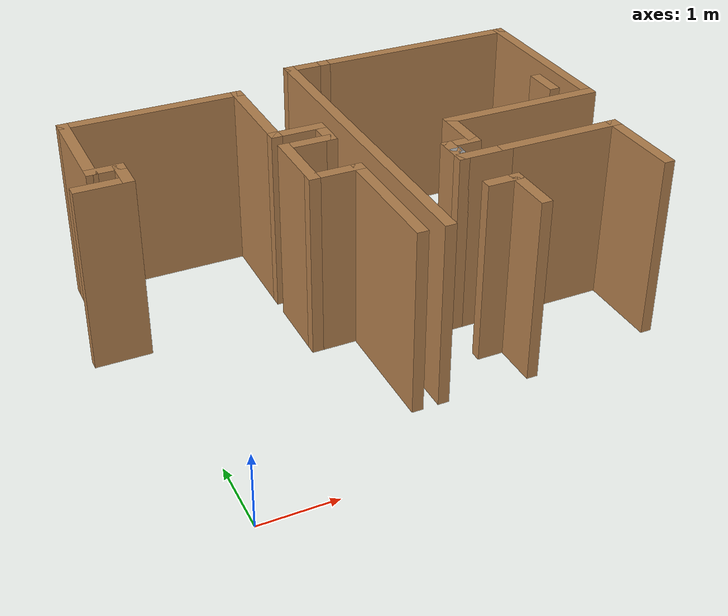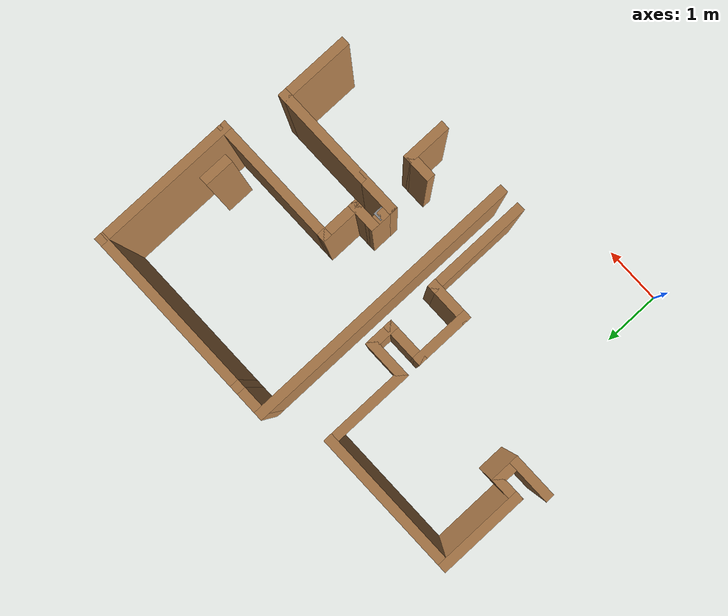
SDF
<sdf version="1.6">
 <model name="map_30">
  <link name="Wall_118">
   <pose>3.86699 1.65366 0 0 -0 0</pose>
   <visual name="Wall_118_Visual">
    <pose>0 0 1.25 0 -0 0</pose>
    <geometry><box><size>0.5 0.15 2.5</size></box></geometry>
    <material>
     <script><uri>file://media/materials/scripts/gazebo.material</uri><name>Gazebo/Wood</name></script>
     <ambient>1 1 1 1</ambient>
     <shader type="pixel"/>
    </material>
    <meta><layer>0</layer></meta>
   </visual>
   <collision name="Wall_118_Collision">
    <pose>0 0 1.25 0 -0 0</pose>
    <geometry><box><size>0.5 0.15 2.5</size></box></geometry>
    <surface>
     <friction>
      <ode><mu>1</mu><mu2>1</mu2><fdir1>0 0 0</fdir1><slip1>0</slip1><slip2>0</slip2></ode>
      <torsional>
       <coefficient>1</coefficient>
       <patch_radius>0</patch_radius>
       <surface_radius>0</surface_radius>
       <use_patch_radius>1</use_patch_radius>
       <ode><slip>0</slip></ode>
      </torsional>
     </friction>
     <bounce><restitution_coefficient>0</restitution_coefficient><threshold>1e+06</threshold></bounce>
     <contact>
      <collide_without_contact>0</collide_without_contact>
      <collide_without_contact_bitmask>1</collide_without_contact_bitmask>
      <collide_bitmask>1</collide_bitmask>
      <ode>
       <soft_cfm>0</soft_cfm>
       <soft_erp>0.2</soft_erp>
       <kp>1e+13</kp>
       <kd>1</kd>
       <max_vel>0.01</max_vel>
       <min_depth>0</min_depth>
      </ode>
      <bullet>
       <split_impulse>1</split_impulse>
       <split_impulse_penetration_threshold>-0.01</split_impulse_penetration_threshold>
       <soft_cfm>0</soft_cfm>
       <soft_erp>0.2</soft_erp>
       <kp>1e+13</kp>
       <kd>1</kd>
      </bullet>
     </contact>
    </surface>
   </collision>
  </link>
  <link name="Wall_121">
   <pose>4.04199 1.35366 0 0 0 -1.5708</pose>
   <visual name="Wall_121_Visual">
    <pose>0 0 1.25 0 -0 0</pose>
    <geometry><box><size>0.75 0.15 2.5</size></box></geometry>
    <material>
     <script><uri>file://media/materials/scripts/gazebo.material</uri><name>Gazebo/Wood</name></script>
     <ambient>1 1 1 1</ambient>
     <shader type="pixel"/>
    </material>
    <meta><layer>0</layer></meta>
   </visual>
   <collision name="Wall_121_Collision">
    <pose>0 0 1.25 0 -0 0</pose>
    <geometry><box><size>0.75 0.15 2.5</size></box></geometry>
    <surface>
     <friction>
      <ode><mu>1</mu><mu2>1</mu2><fdir1>0 0 0</fdir1><slip1>0</slip1><slip2>0</slip2></ode>
      <torsional>
       <coefficient>1</coefficient>
       <patch_radius>0</patch_radius>
       <surface_radius>0</surface_radius>
       <use_patch_radius>1</use_patch_radius>
       <ode><slip>0</slip></ode>
      </torsional>
     </friction>
     <bounce><restitution_coefficient>0</restitution_coefficient><threshold>1e+06</threshold></bounce>
     <contact>
      <collide_without_contact>0</collide_without_contact>
      <collide_without_contact_bitmask>1</collide_without_contact_bitmask>
      <collide_bitmask>1</collide_bitmask>
      <ode>
       <soft_cfm>0</soft_cfm>
       <soft_erp>0.2</soft_erp>
       <kp>1e+13</kp>
       <kd>1</kd>
       <max_vel>0.01</max_vel>
       <min_depth>0</min_depth>
      </ode>
      <bullet>
       <split_impulse>1</split_impulse>
       <split_impulse_penetration_threshold>-0.01</split_impulse_penetration_threshold>
       <soft_cfm>0</soft_cfm>
       <soft_erp>0.2</soft_erp>
       <kp>1e+13</kp>
       <kd>1</kd>
      </bullet>
     </contact>
    </surface>
   </collision>
  </link>
  <link name="Wall_125">
   <pose>5.90506 1.81618 0 0 -0 1.5708</pose>
   <visual name="Wall_125_Visual">
    <pose>0 0 1.25 0 -0 0</pose>
    <geometry><box><size>1.25 0.15 2.5</size></box></geometry>
    <material>
     <script><uri>file://media/materials/scripts/gazebo.material</uri><name>Gazebo/Wood</name></script>
     <ambient>1 1 1 1</ambient>
     <shader type="pixel"/>
    </material>
    <meta><layer>0</layer></meta>
   </visual>
   <collision name="Wall_125_Collision">
    <pose>0 0 1.25 0 -0 0</pose>
    <geometry><box><size>1.25 0.15 2.5</size></box></geometry>
    <surface>
     <friction>
      <ode><mu>1</mu><mu2>1</mu2><fdir1>0 0 0</fdir1><slip1>0</slip1><slip2>0</slip2></ode>
      <torsional>
       <coefficient>1</coefficient>
       <patch_radius>0</patch_radius>
       <surface_radius>0</surface_radius>
       <use_patch_radius>1</use_patch_radius>
       <ode><slip>0</slip></ode>
      </torsional>
     </friction>
     <bounce><restitution_coefficient>0</restitution_coefficient><threshold>1e+06</threshold></bounce>
     <contact>
      <collide_without_contact>0</collide_without_contact>
      <collide_without_contact_bitmask>1</collide_without_contact_bitmask>
      <collide_bitmask>1</collide_bitmask>
      <ode>
       <soft_cfm>0</soft_cfm>
       <soft_erp>0.2</soft_erp>
       <kp>1e+13</kp>
       <kd>1</kd>
       <max_vel>0.01</max_vel>
       <min_depth>0</min_depth>
      </ode>
      <bullet>
       <split_impulse>1</split_impulse>
       <split_impulse_penetration_threshold>-0.01</split_impulse_penetration_threshold>
       <soft_cfm>0</soft_cfm>
       <soft_erp>0.2</soft_erp>
       <kp>1e+13</kp>
       <kd>1</kd>
      </bullet>
     </contact>
    </surface>
   </collision>
  </link>
  <link name="Wall_126">
   <pose>5.10506 2.36618 0 0 -0 3.14159</pose>
   <visual name="Wall_126_Visual">
    <pose>0 0 1.25 0 -0 0</pose>
    <geometry><box><size>1.75 0.15 2.5</size></box></geometry>
    <material>
     <script><uri>file://media/materials/scripts/gazebo.material</uri><name>Gazebo/Wood</name></script>
     <ambient>1 1 1 1</ambient>
     <shader type="pixel"/>
    </material>
    <meta><layer>0</layer></meta>
   </visual>
   <collision name="Wall_126_Collision">
    <pose>0 0 1.25 0 -0 0</pose>
    <geometry><box><size>1.75 0.15 2.5</size></box></geometry>
    <surface>
     <friction>
      <ode><mu>1</mu><mu2>1</mu2><fdir1>0 0 0</fdir1><slip1>0</slip1><slip2>0</slip2></ode>
      <torsional>
       <coefficient>1</coefficient>
       <patch_radius>0</patch_radius>
       <surface_radius>0</surface_radius>
       <use_patch_radius>1</use_patch_radius>
       <ode><slip>0</slip></ode>
      </torsional>
     </friction>
     <bounce><restitution_coefficient>0</restitution_coefficient><threshold>1e+06</threshold></bounce>
     <contact>
      <collide_without_contact>0</collide_without_contact>
      <collide_without_contact_bitmask>1</collide_without_contact_bitmask>
      <collide_bitmask>1</collide_bitmask>
      <ode>
       <soft_cfm>0</soft_cfm>
       <soft_erp>0.2</soft_erp>
       <kp>1e+13</kp>
       <kd>1</kd>
       <max_vel>0.01</max_vel>
       <min_depth>0</min_depth>
      </ode>
      <bullet>
       <split_impulse>1</split_impulse>
       <split_impulse_penetration_threshold>-0.01</split_impulse_penetration_threshold>
       <soft_cfm>0</soft_cfm>
       <soft_erp>0.2</soft_erp>
       <kp>1e+13</kp>
       <kd>1</kd>
      </bullet>
     </contact>
    </surface>
   </collision>
  </link>
  <link name="Wall_128">
   <pose>3.7255 2.52147 0 0 -0 0</pose>
   <visual name="Wall_128_Visual">
    <pose>0 0 1.25 0 -0 0</pose>
    <geometry><box><size>0.15 0.15 2.5</size></box></geometry>
    <material>
     <script><uri>file://media/materials/scripts/gazebo.material</uri><name>Gazebo/Grey</name></script>
     <ambient>1 1 1 1</ambient>
     <shader type="pixel"/>
    </material>
    <meta><layer>0</layer></meta>
   </visual>
   <collision name="Wall_128_Collision">
    <pose>0 0 1.25 0 -0 0</pose>
    <geometry><box><size>0.15 0.15 2.5</size></box></geometry>
    <surface>
     <friction>
      <ode><mu>1</mu><mu2>1</mu2><fdir1>0 0 0</fdir1><slip1>0</slip1><slip2>0</slip2></ode>
      <torsional>
       <coefficient>1</coefficient>
       <patch_radius>0</patch_radius>
       <surface_radius>0</surface_radius>
       <use_patch_radius>1</use_patch_radius>
       <ode><slip>0</slip></ode>
      </torsional>
     </friction>
     <bounce><restitution_coefficient>0</restitution_coefficient><threshold>1e+06</threshold></bounce>
     <contact>
      <collide_without_contact>0</collide_without_contact>
      <collide_without_contact_bitmask>1</collide_without_contact_bitmask>
      <collide_bitmask>1</collide_bitmask>
      <ode>
       <soft_cfm>0</soft_cfm>
       <soft_erp>0.2</soft_erp>
       <kp>1e+13</kp>
       <kd>1</kd>
       <max_vel>0.01</max_vel>
       <min_depth>0</min_depth>
      </ode>
      <bullet>
       <split_impulse>1</split_impulse>
       <split_impulse_penetration_threshold>-0.01</split_impulse_penetration_threshold>
       <soft_cfm>0</soft_cfm>
       <soft_erp>0.2</soft_erp>
       <kp>1e+13</kp>
       <kd>1</kd>
      </bullet>
     </contact>
    </surface>
   </collision>
  </link>
  <link name="Wall_130">
   <pose>4.00506 2.36618 0 0 -0 3.14159</pose>
   <visual name="Wall_130_Visual">
    <pose>0 0 1.25 0 -0 0</pose>
    <geometry><box><size>0.75 0.15 2.5</size></box></geometry>
    <material>
     <script><uri>file://media/materials/scripts/gazebo.material</uri><name>Gazebo/Wood</name></script>
     <ambient>1 1 1 1</ambient>
     <shader type="pixel"/>
    </material>
    <meta><layer>0</layer></meta>
   </visual>
   <collision name="Wall_130_Collision">
    <pose>0 0 1.25 0 -0 0</pose>
    <geometry><box><size>0.75 0.15 2.5</size></box></geometry>
    <surface>
     <friction>
      <ode><mu>1</mu><mu2>1</mu2><fdir1>0 0 0</fdir1><slip1>0</slip1><slip2>0</slip2></ode>
      <torsional>
       <coefficient>1</coefficient>
       <patch_radius>0</patch_radius>
       <surface_radius>0</surface_radius>
       <use_patch_radius>1</use_patch_radius>
       <ode><slip>0</slip></ode>
      </torsional>
     </friction>
     <bounce><restitution_coefficient>0</restitution_coefficient><threshold>1e+06</threshold></bounce>
     <contact>
      <collide_without_contact>0</collide_without_contact>
      <collide_without_contact_bitmask>1</collide_without_contact_bitmask>
      <collide_bitmask>1</collide_bitmask>
      <ode>
       <soft_cfm>0</soft_cfm>
       <soft_erp>0.2</soft_erp>
       <kp>1e+13</kp>
       <kd>1</kd>
       <max_vel>0.01</max_vel>
       <min_depth>0</min_depth>
      </ode>
      <bullet>
       <split_impulse>1</split_impulse>
       <split_impulse_penetration_threshold>-0.01</split_impulse_penetration_threshold>
       <soft_cfm>0</soft_cfm>
       <soft_erp>0.2</soft_erp>
       <kp>1e+13</kp>
       <kd>1</kd>
      </bullet>
     </contact>
    </surface>
   </collision>
  </link>
  <link name="Wall_131">
   <pose>3.70506 2.54118 0 0 -0 1.5708</pose>
   <visual name="Wall_131_Visual">
    <pose>0 0 1.25 0 -0 0</pose>
    <geometry><box><size>0.5 0.15 2.5</size></box></geometry>
    <material>
     <script><uri>file://media/materials/scripts/gazebo.material</uri><name>Gazebo/Wood</name></script>
     <ambient>1 1 1 1</ambient>
     <shader type="pixel"/>
    </material>
    <meta><layer>0</layer></meta>
   </visual>
   <collision name="Wall_131_Collision">
    <pose>0 0 1.25 0 -0 0</pose>
    <geometry><box><size>0.5 0.15 2.5</size></box></geometry>
    <surface>
     <friction>
      <ode><mu>1</mu><mu2>1</mu2><fdir1>0 0 0</fdir1><slip1>0</slip1><slip2>0</slip2></ode>
      <torsional>
       <coefficient>1</coefficient>
       <patch_radius>0</patch_radius>
       <surface_radius>0</surface_radius>
       <use_patch_radius>1</use_patch_radius>
       <ode><slip>0</slip></ode>
      </torsional>
     </friction>
     <bounce><restitution_coefficient>0</restitution_coefficient><threshold>1e+06</threshold></bounce>
     <contact>
      <collide_without_contact>0</collide_without_contact>
      <collide_without_contact_bitmask>1</collide_without_contact_bitmask>
      <collide_bitmask>1</collide_bitmask>
      <ode>
       <soft_cfm>0</soft_cfm>
       <soft_erp>0.2</soft_erp>
       <kp>1e+13</kp>
       <kd>1</kd>
       <max_vel>0.01</max_vel>
       <min_depth>0</min_depth>
      </ode>
      <bullet>
       <split_impulse>1</split_impulse>
       <split_impulse_penetration_threshold>-0.01</split_impulse_penetration_threshold>
       <soft_cfm>0</soft_cfm>
       <soft_erp>0.2</soft_erp>
       <kp>1e+13</kp>
       <kd>1</kd>
      </bullet>
     </contact>
    </surface>
   </collision>
  </link>
  <link name="Wall_132">
   <pose>3.88006 2.71618 0 0 -0 0</pose>
   <visual name="Wall_132_Visual">
    <pose>0 0 1.25 0 -0 0</pose>
    <geometry><box><size>0.5 0.15 2.5</size></box></geometry>
    <material>
     <script><uri>file://media/materials/scripts/gazebo.material</uri><name>Gazebo/Wood</name></script>
     <ambient>1 1 1 1</ambient>
     <shader type="pixel"/>
    </material>
    <meta><layer>0</layer></meta>
   </visual>
   <collision name="Wall_132_Collision">
    <pose>0 0 1.25 0 -0 0</pose>
    <geometry><box><size>0.5 0.15 2.5</size></box></geometry>
    <surface>
     <friction>
      <ode><mu>1</mu><mu2>1</mu2><fdir1>0 0 0</fdir1><slip1>0</slip1><slip2>0</slip2></ode>
      <torsional>
       <coefficient>1</coefficient>
       <patch_radius>0</patch_radius>
       <surface_radius>0</surface_radius>
       <use_patch_radius>1</use_patch_radius>
       <ode><slip>0</slip></ode>
      </torsional>
     </friction>
     <bounce><restitution_coefficient>0</restitution_coefficient><threshold>1e+06</threshold></bounce>
     <contact>
      <collide_without_contact>0</collide_without_contact>
      <collide_without_contact_bitmask>1</collide_without_contact_bitmask>
      <collide_bitmask>1</collide_bitmask>
      <ode>
       <soft_cfm>0</soft_cfm>
       <soft_erp>0.2</soft_erp>
       <kp>1e+13</kp>
       <kd>1</kd>
       <max_vel>0.01</max_vel>
       <min_depth>0</min_depth>
      </ode>
      <bullet>
       <split_impulse>1</split_impulse>
       <split_impulse_penetration_threshold>-0.01</split_impulse_penetration_threshold>
       <soft_cfm>0</soft_cfm>
       <soft_erp>0.2</soft_erp>
       <kp>1e+13</kp>
       <kd>1</kd>
      </bullet>
     </contact>
    </surface>
   </collision>
  </link>
  <link name="Wall_133">
   <pose>4.05506 3.01618 0 0 -0 1.5708</pose>
   <visual name="Wall_133_Visual">
    <pose>0 0 1.25 0 -0 0</pose>
    <geometry><box><size>0.75 0.15 2.5</size></box></geometry>
    <material>
     <script><uri>file://media/materials/scripts/gazebo.material</uri><name>Gazebo/Wood</name></script>
     <ambient>1 1 1 1</ambient>
     <shader type="pixel"/>
    </material>
    <meta><layer>0</layer></meta>
   </visual>
   <collision name="Wall_133_Collision">
    <pose>0 0 1.25 0 -0 0</pose>
    <geometry><box><size>0.75 0.15 2.5</size></box></geometry>
    <surface>
     <friction>
      <ode><mu>1</mu><mu2>1</mu2><fdir1>0 0 0</fdir1><slip1>0</slip1><slip2>0</slip2></ode>
      <torsional>
       <coefficient>1</coefficient>
       <patch_radius>0</patch_radius>
       <surface_radius>0</surface_radius>
       <use_patch_radius>1</use_patch_radius>
       <ode><slip>0</slip></ode>
      </torsional>
     </friction>
     <bounce><restitution_coefficient>0</restitution_coefficient><threshold>1e+06</threshold></bounce>
     <contact>
      <collide_without_contact>0</collide_without_contact>
      <collide_without_contact_bitmask>1</collide_without_contact_bitmask>
      <collide_bitmask>1</collide_bitmask>
      <ode>
       <soft_cfm>0</soft_cfm>
       <soft_erp>0.2</soft_erp>
       <kp>1e+13</kp>
       <kd>1</kd>
       <max_vel>0.01</max_vel>
       <min_depth>0</min_depth>
      </ode>
      <bullet>
       <split_impulse>1</split_impulse>
       <split_impulse_penetration_threshold>-0.01</split_impulse_penetration_threshold>
       <soft_cfm>0</soft_cfm>
       <soft_erp>0.2</soft_erp>
       <kp>1e+13</kp>
       <kd>1</kd>
      </bullet>
     </contact>
    </surface>
   </collision>
  </link>
  <link name="Wall_134">
   <pose>5.10506 3.31618 0 0 -0 0</pose>
   <visual name="Wall_134_Visual">
    <pose>0 0 1.25 0 -0 0</pose>
    <geometry><box><size>2.25 0.15 2.5</size></box></geometry>
    <material>
     <script><uri>file://media/materials/scripts/gazebo.material</uri><name>Gazebo/Wood</name></script>
     <ambient>1 1 1 1</ambient>
     <shader type="pixel"/>
    </material>
    <meta><layer>0</layer></meta>
   </visual>
   <collision name="Wall_134_Collision">
    <pose>0 0 1.25 0 -0 0</pose>
    <geometry><box><size>2.25 0.15 2.5</size></box></geometry>
    <surface>
     <friction>
      <ode><mu>1</mu><mu2>1</mu2><fdir1>0 0 0</fdir1><slip1>0</slip1><slip2>0</slip2></ode>
      <torsional>
       <coefficient>1</coefficient>
       <patch_radius>0</patch_radius>
       <surface_radius>0</surface_radius>
       <use_patch_radius>1</use_patch_radius>
       <ode><slip>0</slip></ode>
      </torsional>
     </friction>
     <bounce><restitution_coefficient>0</restitution_coefficient><threshold>1e+06</threshold></bounce>
     <contact>
      <collide_without_contact>0</collide_without_contact>
      <collide_without_contact_bitmask>1</collide_without_contact_bitmask>
      <collide_bitmask>1</collide_bitmask>
      <ode>
       <soft_cfm>0</soft_cfm>
       <soft_erp>0.2</soft_erp>
       <kp>1e+13</kp>
       <kd>1</kd>
       <max_vel>0.01</max_vel>
       <min_depth>0</min_depth>
      </ode>
      <bullet>
       <split_impulse>1</split_impulse>
       <split_impulse_penetration_threshold>-0.01</split_impulse_penetration_threshold>
       <soft_cfm>0</soft_cfm>
       <soft_erp>0.2</soft_erp>
       <kp>1e+13</kp>
       <kd>1</kd>
      </bullet>
     </contact>
    </surface>
   </collision>
  </link>
  <link name="Wall_135">
   <pose>6.15506 4.49118 0 0 -0 1.5708</pose>
   <visual name="Wall_135_Visual">
    <pose>0 0 1.25 0 -0 0</pose>
    <geometry><box><size>2.5 0.15 2.5</size></box></geometry>
    <material>
     <script><uri>file://media/materials/scripts/gazebo.material</uri><name>Gazebo/Wood</name></script>
     <ambient>1 1 1 1</ambient>
     <shader type="pixel"/>
    </material>
    <meta><layer>0</layer></meta>
   </visual>
   <collision name="Wall_135_Collision">
    <pose>0 0 1.25 0 -0 0</pose>
    <geometry><box><size>2.5 0.15 2.5</size></box></geometry>
    <surface>
     <friction>
      <ode><mu>1</mu><mu2>1</mu2><fdir1>0 0 0</fdir1><slip1>0</slip1><slip2>0</slip2></ode>
      <torsional>
       <coefficient>1</coefficient>
       <patch_radius>0</patch_radius>
       <surface_radius>0</surface_radius>
       <use_patch_radius>1</use_patch_radius>
       <ode><slip>0</slip></ode>
      </torsional>
     </friction>
     <bounce><restitution_coefficient>0</restitution_coefficient><threshold>1e+06</threshold></bounce>
     <contact>
      <collide_without_contact>0</collide_without_contact>
      <collide_without_contact_bitmask>1</collide_without_contact_bitmask>
      <collide_bitmask>1</collide_bitmask>
      <ode>
       <soft_cfm>0</soft_cfm>
       <soft_erp>0.2</soft_erp>
       <kp>1e+13</kp>
       <kd>1</kd>
       <max_vel>0.01</max_vel>
       <min_depth>0</min_depth>
      </ode>
      <bullet>
       <split_impulse>1</split_impulse>
       <split_impulse_penetration_threshold>-0.01</split_impulse_penetration_threshold>
       <soft_cfm>0</soft_cfm>
       <soft_erp>0.2</soft_erp>
       <kp>1e+13</kp>
       <kd>1</kd>
      </bullet>
     </contact>
    </surface>
   </collision>
  </link>
  <link name="Wall_137">
   <pose>3.30506 5.66618 0 0 -0 0</pose>
   <visual name="Wall_137_Visual">
    <pose>0 0 1.25 0 -0 0</pose>
    <geometry><box><size>0.15 0.15 2.5</size></box></geometry>
    <material>
     <script><uri>file://media/materials/scripts/gazebo.material</uri><name>Gazebo/Wood</name></script>
     <ambient>1 1 1 1</ambient>
     <shader type="pixel"/>
    </material>
    <meta><layer>0</layer></meta>
   </visual>
   <collision name="Wall_137_Collision">
    <pose>0 0 1.25 0 -0 0</pose>
    <geometry><box><size>0.15 0.15 2.5</size></box></geometry>
    <surface>
     <friction>
      <ode><mu>1</mu><mu2>1</mu2><fdir1>0 0 0</fdir1><slip1>0</slip1><slip2>0</slip2></ode>
      <torsional>
       <coefficient>1</coefficient>
       <patch_radius>0</patch_radius>
       <surface_radius>0</surface_radius>
       <use_patch_radius>1</use_patch_radius>
       <ode><slip>0</slip></ode>
      </torsional>
     </friction>
     <bounce><restitution_coefficient>0</restitution_coefficient><threshold>1e+06</threshold></bounce>
     <contact>
      <collide_without_contact>0</collide_without_contact>
      <collide_without_contact_bitmask>1</collide_without_contact_bitmask>
      <collide_bitmask>1</collide_bitmask>
      <ode>
       <soft_cfm>0</soft_cfm>
       <soft_erp>0.2</soft_erp>
       <kp>1e+13</kp>
       <kd>1</kd>
       <max_vel>0.01</max_vel>
       <min_depth>0</min_depth>
      </ode>
      <bullet>
       <split_impulse>1</split_impulse>
       <split_impulse_penetration_threshold>-0.01</split_impulse_penetration_threshold>
       <soft_cfm>0</soft_cfm>
       <soft_erp>0.2</soft_erp>
       <kp>1e+13</kp>
       <kd>1</kd>
      </bullet>
     </contact>
    </surface>
   </collision>
  </link>
  <link name="Wall_143">
   <pose>4.48006 5.66618 0 0 -0 3.14159</pose>
   <visual name="Wall_143_Visual">
    <pose>0 0 1.25 0 -0 0</pose>
    <geometry><box><size>3.5 0.15 2.5</size></box></geometry>
    <material>
     <script><uri>file://media/materials/scripts/gazebo.material</uri><name>Gazebo/Wood</name></script>
     <ambient>1 1 1 1</ambient>
     <shader type="pixel"/>
    </material>
    <meta><layer>0</layer></meta>
   </visual>
   <collision name="Wall_143_Collision">
    <pose>0 0 1.25 0 -0 0</pose>
    <geometry><box><size>3.5 0.15 2.5</size></box></geometry>
    <surface>
     <friction>
      <ode><mu>1</mu><mu2>1</mu2><fdir1>0 0 0</fdir1><slip1>0</slip1><slip2>0</slip2></ode>
      <torsional>
       <coefficient>1</coefficient>
       <patch_radius>0</patch_radius>
       <surface_radius>0</surface_radius>
       <use_patch_radius>1</use_patch_radius>
       <ode><slip>0</slip></ode>
      </torsional>
     </friction>
     <bounce><restitution_coefficient>0</restitution_coefficient><threshold>1e+06</threshold></bounce>
     <contact>
      <collide_without_contact>0</collide_without_contact>
      <collide_without_contact_bitmask>1</collide_without_contact_bitmask>
      <collide_bitmask>1</collide_bitmask>
      <ode>
       <soft_cfm>0</soft_cfm>
       <soft_erp>0.2</soft_erp>
       <kp>1e+13</kp>
       <kd>1</kd>
       <max_vel>0.01</max_vel>
       <min_depth>0</min_depth>
      </ode>
      <bullet>
       <split_impulse>1</split_impulse>
       <split_impulse_penetration_threshold>-0.01</split_impulse_penetration_threshold>
       <soft_cfm>0</soft_cfm>
       <soft_erp>0.2</soft_erp>
       <kp>1e+13</kp>
       <kd>1</kd>
      </bullet>
     </contact>
    </surface>
   </collision>
  </link>
  <link name="Wall_144">
   <pose>2.80506 3.36618 0 0 0 -1.5708</pose>
   <visual name="Wall_144_Visual">
    <pose>0 0 1.25 0 -0 0</pose>
    <geometry><box><size>4.75 0.15 2.5</size></box></geometry>
    <material>
     <script><uri>file://media/materials/scripts/gazebo.material</uri><name>Gazebo/Wood</name></script>
     <ambient>1 1 1 1</ambient>
     <shader type="pixel"/>
    </material>
    <meta><layer>0</layer></meta>
   </visual>
   <collision name="Wall_144_Collision">
    <pose>0 0 1.25 0 -0 0</pose>
    <geometry><box><size>4.75 0.15 2.5</size></box></geometry>
    <surface>
     <friction>
      <ode><mu>1</mu><mu2>1</mu2><fdir1>0 0 0</fdir1><slip1>0</slip1><slip2>0</slip2></ode>
      <torsional>
       <coefficient>1</coefficient>
       <patch_radius>0</patch_radius>
       <surface_radius>0</surface_radius>
       <use_patch_radius>1</use_patch_radius>
       <ode><slip>0</slip></ode>
      </torsional>
     </friction>
     <bounce><restitution_coefficient>0</restitution_coefficient><threshold>1e+06</threshold></bounce>
     <contact>
      <collide_without_contact>0</collide_without_contact>
      <collide_without_contact_bitmask>1</collide_without_contact_bitmask>
      <collide_bitmask>1</collide_bitmask>
      <ode>
       <soft_cfm>0</soft_cfm>
       <soft_erp>0.2</soft_erp>
       <kp>1e+13</kp>
       <kd>1</kd>
       <max_vel>0.01</max_vel>
       <min_depth>0</min_depth>
      </ode>
      <bullet>
       <split_impulse>1</split_impulse>
       <split_impulse_penetration_threshold>-0.01</split_impulse_penetration_threshold>
       <soft_cfm>0</soft_cfm>
       <soft_erp>0.2</soft_erp>
       <kp>1e+13</kp>
       <kd>1</kd>
      </bullet>
     </contact>
    </surface>
   </collision>
  </link>
  <link name="Wall_146">
   <pose>2.45506 1.86618 0 0 -0 1.5708</pose>
   <visual name="Wall_146_Visual">
    <pose>0 0 1.25 0 -0 0</pose>
    <geometry><box><size>1.75 0.15 2.5</size></box></geometry>
    <material>
     <script><uri>file://media/materials/scripts/gazebo.material</uri><name>Gazebo/Wood</name></script>
     <ambient>1 1 1 1</ambient>
     <shader type="pixel"/>
    </material>
    <meta><layer>0</layer></meta>
   </visual>
   <collision name="Wall_146_Collision">
    <pose>0 0 1.25 0 -0 0</pose>
    <geometry><box><size>1.75 0.15 2.5</size></box></geometry>
    <surface>
     <friction>
      <ode><mu>1</mu><mu2>1</mu2><fdir1>0 0 0</fdir1><slip1>0</slip1><slip2>0</slip2></ode>
      <torsional>
       <coefficient>1</coefficient>
       <patch_radius>0</patch_radius>
       <surface_radius>0</surface_radius>
       <use_patch_radius>1</use_patch_radius>
       <ode><slip>0</slip></ode>
      </torsional>
     </friction>
     <bounce><restitution_coefficient>0</restitution_coefficient><threshold>1e+06</threshold></bounce>
     <contact>
      <collide_without_contact>0</collide_without_contact>
      <collide_without_contact_bitmask>1</collide_without_contact_bitmask>
      <collide_bitmask>1</collide_bitmask>
      <ode>
       <soft_cfm>0</soft_cfm>
       <soft_erp>0.2</soft_erp>
       <kp>1e+13</kp>
       <kd>1</kd>
       <max_vel>0.01</max_vel>
       <min_depth>0</min_depth>
      </ode>
      <bullet>
       <split_impulse>1</split_impulse>
       <split_impulse_penetration_threshold>-0.01</split_impulse_penetration_threshold>
       <soft_cfm>0</soft_cfm>
       <soft_erp>0.2</soft_erp>
       <kp>1e+13</kp>
       <kd>1</kd>
      </bullet>
     </contact>
    </surface>
   </collision>
  </link>
  <link name="Wall_147">
   <pose>2.15506 2.66618 0 0 -0 3.14159</pose>
   <visual name="Wall_147_Visual">
    <pose>0 0 1.25 0 -0 0</pose>
    <geometry><box><size>0.75 0.15 2.5</size></box></geometry>
    <material>
     <script><uri>file://media/materials/scripts/gazebo.material</uri><name>Gazebo/Wood</name></script>
     <ambient>1 1 1 1</ambient>
     <shader type="pixel"/>
    </material>
    <meta><layer>0</layer></meta>
   </visual>
   <collision name="Wall_147_Collision">
    <pose>0 0 1.25 0 -0 0</pose>
    <geometry><box><size>0.75 0.15 2.5</size></box></geometry>
    <surface>
     <friction>
      <ode><mu>1</mu><mu2>1</mu2><fdir1>0 0 0</fdir1><slip1>0</slip1><slip2>0</slip2></ode>
      <torsional>
       <coefficient>1</coefficient>
       <patch_radius>0</patch_radius>
       <surface_radius>0</surface_radius>
       <use_patch_radius>1</use_patch_radius>
       <ode><slip>0</slip></ode>
      </torsional>
     </friction>
     <bounce><restitution_coefficient>0</restitution_coefficient><threshold>1e+06</threshold></bounce>
     <contact>
      <collide_without_contact>0</collide_without_contact>
      <collide_without_contact_bitmask>1</collide_without_contact_bitmask>
      <collide_bitmask>1</collide_bitmask>
      <ode>
       <soft_cfm>0</soft_cfm>
       <soft_erp>0.2</soft_erp>
       <kp>1e+13</kp>
       <kd>1</kd>
       <max_vel>0.01</max_vel>
       <min_depth>0</min_depth>
      </ode>
      <bullet>
       <split_impulse>1</split_impulse>
       <split_impulse_penetration_threshold>-0.01</split_impulse_penetration_threshold>
       <soft_cfm>0</soft_cfm>
       <soft_erp>0.2</soft_erp>
       <kp>1e+13</kp>
       <kd>1</kd>
      </bullet>
     </contact>
    </surface>
   </collision>
  </link>
  <link name="Wall_148">
   <pose>1.85506 3.09118 0 0 -0 1.5708</pose>
   <visual name="Wall_148_Visual">
    <pose>0 0 1.25 0 -0 0</pose>
    <geometry><box><size>1 0.15 2.5</size></box></geometry>
    <material>
     <script><uri>file://media/materials/scripts/gazebo.material</uri><name>Gazebo/Wood</name></script>
     <ambient>1 1 1 1</ambient>
     <shader type="pixel"/>
    </material>
    <meta><layer>0</layer></meta>
   </visual>
   <collision name="Wall_148_Collision">
    <pose>0 0 1.25 0 -0 0</pose>
    <geometry><box><size>1 0.15 2.5</size></box></geometry>
    <surface>
     <friction>
      <ode><mu>1</mu><mu2>1</mu2><fdir1>0 0 0</fdir1><slip1>0</slip1><slip2>0</slip2></ode>
      <torsional>
       <coefficient>1</coefficient>
       <patch_radius>0</patch_radius>
       <surface_radius>0</surface_radius>
       <use_patch_radius>1</use_patch_radius>
       <ode><slip>0</slip></ode>
      </torsional>
     </friction>
     <bounce><restitution_coefficient>0</restitution_coefficient><threshold>1e+06</threshold></bounce>
     <contact>
      <collide_without_contact>0</collide_without_contact>
      <collide_without_contact_bitmask>1</collide_without_contact_bitmask>
      <collide_bitmask>1</collide_bitmask>
      <ode>
       <soft_cfm>0</soft_cfm>
       <soft_erp>0.2</soft_erp>
       <kp>1e+13</kp>
       <kd>1</kd>
       <max_vel>0.01</max_vel>
       <min_depth>0</min_depth>
      </ode>
      <bullet>
       <split_impulse>1</split_impulse>
       <split_impulse_penetration_threshold>-0.01</split_impulse_penetration_threshold>
       <soft_cfm>0</soft_cfm>
       <soft_erp>0.2</soft_erp>
       <kp>1e+13</kp>
       <kd>1</kd>
      </bullet>
     </contact>
    </surface>
   </collision>
  </link>
  <link name="Wall_149">
   <pose>2.15506 3.51618 0 0 -0 0</pose>
   <visual name="Wall_149_Visual">
    <pose>0 0 1.25 0 -0 0</pose>
    <geometry><box><size>0.75 0.15 2.5</size></box></geometry>
    <material>
     <script><uri>file://media/materials/scripts/gazebo.material</uri><name>Gazebo/Wood</name></script>
     <ambient>1 1 1 1</ambient>
     <shader type="pixel"/>
    </material>
    <meta><layer>0</layer></meta>
   </visual>
   <collision name="Wall_149_Collision">
    <pose>0 0 1.25 0 -0 0</pose>
    <geometry><box><size>0.75 0.15 2.5</size></box></geometry>
    <surface>
     <friction>
      <ode><mu>1</mu><mu2>1</mu2><fdir1>0 0 0</fdir1><slip1>0</slip1><slip2>0</slip2></ode>
      <torsional>
       <coefficient>1</coefficient>
       <patch_radius>0</patch_radius>
       <surface_radius>0</surface_radius>
       <use_patch_radius>1</use_patch_radius>
       <ode><slip>0</slip></ode>
      </torsional>
     </friction>
     <bounce><restitution_coefficient>0</restitution_coefficient><threshold>1e+06</threshold></bounce>
     <contact>
      <collide_without_contact>0</collide_without_contact>
      <collide_without_contact_bitmask>1</collide_without_contact_bitmask>
      <collide_bitmask>1</collide_bitmask>
      <ode>
       <soft_cfm>0</soft_cfm>
       <soft_erp>0.2</soft_erp>
       <kp>1e+13</kp>
       <kd>1</kd>
       <max_vel>0.01</max_vel>
       <min_depth>0</min_depth>
      </ode>
      <bullet>
       <split_impulse>1</split_impulse>
       <split_impulse_penetration_threshold>-0.01</split_impulse_penetration_threshold>
       <soft_cfm>0</soft_cfm>
       <soft_erp>0.2</soft_erp>
       <kp>1e+13</kp>
       <kd>1</kd>
      </bullet>
     </contact>
    </surface>
   </collision>
  </link>
  <link name="Wall_150">
   <pose>2.45506 3.69118 0 0 -0 1.5708</pose>
   <visual name="Wall_150_Visual">
    <pose>0 0 1.25 0 -0 0</pose>
    <geometry><box><size>0.5 0.15 2.5</size></box></geometry>
    <material>
     <script><uri>file://media/materials/scripts/gazebo.material</uri><name>Gazebo/Wood</name></script>
     <ambient>1 1 1 1</ambient>
     <shader type="pixel"/>
    </material>
    <meta><layer>0</layer></meta>
   </visual>
   <collision name="Wall_150_Collision">
    <pose>0 0 1.25 0 -0 0</pose>
    <geometry><box><size>0.5 0.15 2.5</size></box></geometry>
    <surface>
     <friction>
      <ode><mu>1</mu><mu2>1</mu2><fdir1>0 0 0</fdir1><slip1>0</slip1><slip2>0</slip2></ode>
      <torsional>
       <coefficient>1</coefficient>
       <patch_radius>0</patch_radius>
       <surface_radius>0</surface_radius>
       <use_patch_radius>1</use_patch_radius>
       <ode><slip>0</slip></ode>
      </torsional>
     </friction>
     <bounce><restitution_coefficient>0</restitution_coefficient><threshold>1e+06</threshold></bounce>
     <contact>
      <collide_without_contact>0</collide_without_contact>
      <collide_without_contact_bitmask>1</collide_without_contact_bitmask>
      <collide_bitmask>1</collide_bitmask>
      <ode>
       <soft_cfm>0</soft_cfm>
       <soft_erp>0.2</soft_erp>
       <kp>1e+13</kp>
       <kd>1</kd>
       <max_vel>0.01</max_vel>
       <min_depth>0</min_depth>
      </ode>
      <bullet>
       <split_impulse>1</split_impulse>
       <split_impulse_penetration_threshold>-0.01</split_impulse_penetration_threshold>
       <soft_cfm>0</soft_cfm>
       <soft_erp>0.2</soft_erp>
       <kp>1e+13</kp>
       <kd>1</kd>
      </bullet>
     </contact>
    </surface>
   </collision>
  </link>
  <link name="Wall_151">
   <pose>2.15506 3.86618 0 0 -0 3.14159</pose>
   <visual name="Wall_151_Visual">
    <pose>0 0 1.25 0 -0 0</pose>
    <geometry><box><size>0.75 0.15 2.5</size></box></geometry>
    <material>
     <script><uri>file://media/materials/scripts/gazebo.material</uri><name>Gazebo/Wood</name></script>
     <ambient>1 1 1 1</ambient>
     <shader type="pixel"/>
    </material>
    <meta><layer>0</layer></meta>
   </visual>
   <collision name="Wall_151_Collision">
    <pose>0 0 1.25 0 -0 0</pose>
    <geometry><box><size>0.75 0.15 2.5</size></box></geometry>
    <surface>
     <friction>
      <ode><mu>1</mu><mu2>1</mu2><fdir1>0 0 0</fdir1><slip1>0</slip1><slip2>0</slip2></ode>
      <torsional>
       <coefficient>1</coefficient>
       <patch_radius>0</patch_radius>
       <surface_radius>0</surface_radius>
       <use_patch_radius>1</use_patch_radius>
       <ode><slip>0</slip></ode>
      </torsional>
     </friction>
     <bounce><restitution_coefficient>0</restitution_coefficient><threshold>1e+06</threshold></bounce>
     <contact>
      <collide_without_contact>0</collide_without_contact>
      <collide_without_contact_bitmask>1</collide_without_contact_bitmask>
      <collide_bitmask>1</collide_bitmask>
      <ode>
       <soft_cfm>0</soft_cfm>
       <soft_erp>0.2</soft_erp>
       <kp>1e+13</kp>
       <kd>1</kd>
       <max_vel>0.01</max_vel>
       <min_depth>0</min_depth>
      </ode>
      <bullet>
       <split_impulse>1</split_impulse>
       <split_impulse_penetration_threshold>-0.01</split_impulse_penetration_threshold>
       <soft_cfm>0</soft_cfm>
       <soft_erp>0.2</soft_erp>
       <kp>1e+13</kp>
       <kd>1</kd>
      </bullet>
     </contact>
    </surface>
   </collision>
  </link>
  <link name="Wall_152">
   <pose>1.85506 4.54118 0 0 -0 1.5708</pose>
   <visual name="Wall_152_Visual">
    <pose>0 0 1.25 0 -0 0</pose>
    <geometry><box><size>1.5 0.15 2.5</size></box></geometry>
    <material>
     <script><uri>file://media/materials/scripts/gazebo.material</uri><name>Gazebo/Wood</name></script>
     <ambient>1 1 1 1</ambient>
     <shader type="pixel"/>
    </material>
    <meta><layer>0</layer></meta>
   </visual>
   <collision name="Wall_152_Collision">
    <pose>0 0 1.25 0 -0 0</pose>
    <geometry><box><size>1.5 0.15 2.5</size></box></geometry>
    <surface>
     <friction>
      <ode><mu>1</mu><mu2>1</mu2><fdir1>0 0 0</fdir1><slip1>0</slip1><slip2>0</slip2></ode>
      <torsional>
       <coefficient>1</coefficient>
       <patch_radius>0</patch_radius>
       <surface_radius>0</surface_radius>
       <use_patch_radius>1</use_patch_radius>
       <ode><slip>0</slip></ode>
      </torsional>
     </friction>
     <bounce><restitution_coefficient>0</restitution_coefficient><threshold>1e+06</threshold></bounce>
     <contact>
      <collide_without_contact>0</collide_without_contact>
      <collide_without_contact_bitmask>1</collide_without_contact_bitmask>
      <collide_bitmask>1</collide_bitmask>
      <ode>
       <soft_cfm>0</soft_cfm>
       <soft_erp>0.2</soft_erp>
       <kp>1e+13</kp>
       <kd>1</kd>
       <max_vel>0.01</max_vel>
       <min_depth>0</min_depth>
      </ode>
      <bullet>
       <split_impulse>1</split_impulse>
       <split_impulse_penetration_threshold>-0.01</split_impulse_penetration_threshold>
       <soft_cfm>0</soft_cfm>
       <soft_erp>0.2</soft_erp>
       <kp>1e+13</kp>
       <kd>1</kd>
      </bullet>
     </contact>
    </surface>
   </collision>
  </link>
  <link name="Wall_153">
   <pose>0.680059 5.21618 0 0 -0 3.14159</pose>
   <visual name="Wall_153_Visual">
    <pose>0 0 1.25 0 -0 0</pose>
    <geometry><box><size>2.5 0.15 2.5</size></box></geometry>
    <material>
     <script><uri>file://media/materials/scripts/gazebo.material</uri><name>Gazebo/Wood</name></script>
     <ambient>1 1 1 1</ambient>
     <shader type="pixel"/>
    </material>
    <meta><layer>0</layer></meta>
   </visual>
   <collision name="Wall_153_Collision">
    <pose>0 0 1.25 0 -0 0</pose>
    <geometry><box><size>2.5 0.15 2.5</size></box></geometry>
    <surface>
     <friction>
      <ode><mu>1</mu><mu2>1</mu2><fdir1>0 0 0</fdir1><slip1>0</slip1><slip2>0</slip2></ode>
      <torsional>
       <coefficient>1</coefficient>
       <patch_radius>0</patch_radius>
       <surface_radius>0</surface_radius>
       <use_patch_radius>1</use_patch_radius>
       <ode><slip>0</slip></ode>
      </torsional>
     </friction>
     <bounce><restitution_coefficient>0</restitution_coefficient><threshold>1e+06</threshold></bounce>
     <contact>
      <collide_without_contact>0</collide_without_contact>
      <collide_without_contact_bitmask>1</collide_without_contact_bitmask>
      <collide_bitmask>1</collide_bitmask>
      <ode>
       <soft_cfm>0</soft_cfm>
       <soft_erp>0.2</soft_erp>
       <kp>1e+13</kp>
       <kd>1</kd>
       <max_vel>0.01</max_vel>
       <min_depth>0</min_depth>
      </ode>
      <bullet>
       <split_impulse>1</split_impulse>
       <split_impulse_penetration_threshold>-0.01</split_impulse_penetration_threshold>
       <soft_cfm>0</soft_cfm>
       <soft_erp>0.2</soft_erp>
       <kp>1e+13</kp>
       <kd>1</kd>
      </bullet>
     </contact>
    </surface>
   </collision>
  </link>
  <link name="Wall_154">
   <pose>-0.494941 4.54118 0 0 0 -1.5708</pose>
   <visual name="Wall_154_Visual">
    <pose>0 0 1.25 0 -0 0</pose>
    <geometry><box><size>1.5 0.15 2.5</size></box></geometry>
    <material>
     <script><uri>file://media/materials/scripts/gazebo.material</uri><name>Gazebo/Wood</name></script>
     <ambient>1 1 1 1</ambient>
     <shader type="pixel"/>
    </material>
    <meta><layer>0</layer></meta>
   </visual>
   <collision name="Wall_154_Collision">
    <pose>0 0 1.25 0 -0 0</pose>
    <geometry><box><size>1.5 0.15 2.5</size></box></geometry>
    <surface>
     <friction>
      <ode><mu>1</mu><mu2>1</mu2><fdir1>0 0 0</fdir1><slip1>0</slip1><slip2>0</slip2></ode>
      <torsional>
       <coefficient>1</coefficient>
       <patch_radius>0</patch_radius>
       <surface_radius>0</surface_radius>
       <use_patch_radius>1</use_patch_radius>
       <ode><slip>0</slip></ode>
      </torsional>
     </friction>
     <bounce><restitution_coefficient>0</restitution_coefficient><threshold>1e+06</threshold></bounce>
     <contact>
      <collide_without_contact>0</collide_without_contact>
      <collide_without_contact_bitmask>1</collide_without_contact_bitmask>
      <collide_bitmask>1</collide_bitmask>
      <ode>
       <soft_cfm>0</soft_cfm>
       <soft_erp>0.2</soft_erp>
       <kp>1e+13</kp>
       <kd>1</kd>
       <max_vel>0.01</max_vel>
       <min_depth>0</min_depth>
      </ode>
      <bullet>
       <split_impulse>1</split_impulse>
       <split_impulse_penetration_threshold>-0.01</split_impulse_penetration_threshold>
       <soft_cfm>0</soft_cfm>
       <soft_erp>0.2</soft_erp>
       <kp>1e+13</kp>
       <kd>1</kd>
      </bullet>
     </contact>
    </surface>
   </collision>
  </link>
  <link name="Wall_155">
   <pose>-0.319941 3.86618 0 0 -0 0</pose>
   <visual name="Wall_155_Visual">
    <pose>0 0 1.25 0 -0 0</pose>
    <geometry><box><size>0.5 0.15 2.5</size></box></geometry>
    <material>
     <script><uri>file://media/materials/scripts/gazebo.material</uri><name>Gazebo/Wood</name></script>
     <ambient>1 1 1 1</ambient>
     <shader type="pixel"/>
    </material>
    <meta><layer>0</layer></meta>
   </visual>
   <collision name="Wall_155_Collision">
    <pose>0 0 1.25 0 -0 0</pose>
    <geometry><box><size>0.5 0.15 2.5</size></box></geometry>
    <surface>
     <friction>
      <ode><mu>1</mu><mu2>1</mu2><fdir1>0 0 0</fdir1><slip1>0</slip1><slip2>0</slip2></ode>
      <torsional>
       <coefficient>1</coefficient>
       <patch_radius>0</patch_radius>
       <surface_radius>0</surface_radius>
       <use_patch_radius>1</use_patch_radius>
       <ode><slip>0</slip></ode>
      </torsional>
     </friction>
     <bounce><restitution_coefficient>0</restitution_coefficient><threshold>1e+06</threshold></bounce>
     <contact>
      <collide_without_contact>0</collide_without_contact>
      <collide_without_contact_bitmask>1</collide_without_contact_bitmask>
      <collide_bitmask>1</collide_bitmask>
      <ode>
       <soft_cfm>0</soft_cfm>
       <soft_erp>0.2</soft_erp>
       <kp>1e+13</kp>
       <kd>1</kd>
       <max_vel>0.01</max_vel>
       <min_depth>0</min_depth>
      </ode>
      <bullet>
       <split_impulse>1</split_impulse>
       <split_impulse_penetration_threshold>-0.01</split_impulse_penetration_threshold>
       <soft_cfm>0</soft_cfm>
       <soft_erp>0.2</soft_erp>
       <kp>1e+13</kp>
       <kd>1</kd>
      </bullet>
     </contact>
    </surface>
   </collision>
  </link>
  <link name="Wall_156">
   <pose>-0.14494 3.69118 0 0 0 -1.5708</pose>
   <visual name="Wall_156_Visual">
    <pose>0 0 1.25 0 -0 0</pose>
    <geometry><box><size>0.5 0.15 2.5</size></box></geometry>
    <material>
     <script><uri>file://media/materials/scripts/gazebo.material</uri><name>Gazebo/Wood</name></script>
     <ambient>1 1 1 1</ambient>
     <shader type="pixel"/>
    </material>
    <meta><layer>0</layer></meta>
   </visual>
   <collision name="Wall_156_Collision">
    <pose>0 0 1.25 0 -0 0</pose>
    <geometry><box><size>0.5 0.15 2.5</size></box></geometry>
    <surface>
     <friction>
      <ode><mu>1</mu><mu2>1</mu2><fdir1>0 0 0</fdir1><slip1>0</slip1><slip2>0</slip2></ode>
      <torsional>
       <coefficient>1</coefficient>
       <patch_radius>0</patch_radius>
       <surface_radius>0</surface_radius>
       <use_patch_radius>1</use_patch_radius>
       <ode><slip>0</slip></ode>
      </torsional>
     </friction>
     <bounce><restitution_coefficient>0</restitution_coefficient><threshold>1e+06</threshold></bounce>
     <contact>
      <collide_without_contact>0</collide_without_contact>
      <collide_without_contact_bitmask>1</collide_without_contact_bitmask>
      <collide_bitmask>1</collide_bitmask>
      <ode>
       <soft_cfm>0</soft_cfm>
       <soft_erp>0.2</soft_erp>
       <kp>1e+13</kp>
       <kd>1</kd>
       <max_vel>0.01</max_vel>
       <min_depth>0</min_depth>
      </ode>
      <bullet>
       <split_impulse>1</split_impulse>
       <split_impulse_penetration_threshold>-0.01</split_impulse_penetration_threshold>
       <soft_cfm>0</soft_cfm>
       <soft_erp>0.2</soft_erp>
       <kp>1e+13</kp>
       <kd>1</kd>
      </bullet>
     </contact>
    </surface>
   </collision>
  </link>
  <link name="Wall_157">
   <pose>-0.444941 3.51618 0 0 -0 3.14159</pose>
   <visual name="Wall_157_Visual">
    <pose>0 0 1.25 0 -0 0</pose>
    <geometry><box><size>0.75 0.15 2.5</size></box></geometry>
    <material>
     <script><uri>file://media/materials/scripts/gazebo.material</uri><name>Gazebo/Wood</name></script>
     <ambient>1 1 1 1</ambient>
     <shader type="pixel"/>
    </material>
    <meta><layer>0</layer></meta>
   </visual>
   <collision name="Wall_157_Collision">
    <pose>0 0 1.25 0 -0 0</pose>
    <geometry><box><size>0.75 0.15 2.5</size></box></geometry>
    <surface>
     <friction>
      <ode><mu>1</mu><mu2>1</mu2><fdir1>0 0 0</fdir1><slip1>0</slip1><slip2>0</slip2></ode>
      <torsional>
       <coefficient>1</coefficient>
       <patch_radius>0</patch_radius>
       <surface_radius>0</surface_radius>
       <use_patch_radius>1</use_patch_radius>
       <ode><slip>0</slip></ode>
      </torsional>
     </friction>
     <bounce><restitution_coefficient>0</restitution_coefficient><threshold>1e+06</threshold></bounce>
     <contact>
      <collide_without_contact>0</collide_without_contact>
      <collide_without_contact_bitmask>1</collide_without_contact_bitmask>
      <collide_bitmask>1</collide_bitmask>
      <ode>
       <soft_cfm>0</soft_cfm>
       <soft_erp>0.2</soft_erp>
       <kp>1e+13</kp>
       <kd>1</kd>
       <max_vel>0.01</max_vel>
       <min_depth>0</min_depth>
      </ode>
      <bullet>
       <split_impulse>1</split_impulse>
       <split_impulse_penetration_threshold>-0.01</split_impulse_penetration_threshold>
       <soft_cfm>0</soft_cfm>
       <soft_erp>0.2</soft_erp>
       <kp>1e+13</kp>
       <kd>1</kd>
      </bullet>
     </contact>
    </surface>
   </collision>
  </link>
  <link name="Wall_204">
   <pose>5.78684 3.81203 0 0 0 -1.5708</pose>
   <visual name="Wall_204_Visual">
    <pose>0 0 1.25 0 -0 0</pose>
    <geometry><box><size>0.5 0.15 2.5</size></box></geometry>
    <material>
     <script><uri>file://media/materials/scripts/gazebo.material</uri><name>Gazebo/Wood</name></script>
     <ambient>1 1 1 1</ambient>
     <shader type="pixel"/>
    </material>
    <meta><layer>0</layer></meta>
   </visual>
   <collision name="Wall_204_Collision">
    <pose>0 0 1.25 0 -0 0</pose>
    <geometry><box><size>0.5 0.15 2.5</size></box></geometry>
    <surface>
     <friction>
      <ode><mu>1</mu><mu2>1</mu2><fdir1>0 0 0</fdir1><slip1>0</slip1><slip2>0</slip2></ode>
      <torsional>
       <coefficient>1</coefficient>
       <patch_radius>0</patch_radius>
       <surface_radius>0</surface_radius>
       <use_patch_radius>1</use_patch_radius>
       <ode><slip>0</slip></ode>
      </torsional>
     </friction>
     <bounce><restitution_coefficient>0</restitution_coefficient><threshold>1e+06</threshold></bounce>
     <contact>
      <collide_without_contact>0</collide_without_contact>
      <collide_without_contact_bitmask>1</collide_without_contact_bitmask>
      <collide_bitmask>1</collide_bitmask>
      <ode>
       <soft_cfm>0</soft_cfm>
       <soft_erp>0.2</soft_erp>
       <kp>1e+13</kp>
       <kd>1</kd>
       <max_vel>0.01</max_vel>
       <min_depth>0</min_depth>
      </ode>
      <bullet>
       <split_impulse>1</split_impulse>
       <split_impulse_penetration_threshold>-0.01</split_impulse_penetration_threshold>
       <soft_cfm>0</soft_cfm>
       <soft_erp>0.2</soft_erp>
       <kp>1e+13</kp>
       <kd>1</kd>
      </bullet>
     </contact>
    </surface>
   </collision>
  </link>
  <static>1</static>
 </model>
</sdf>
